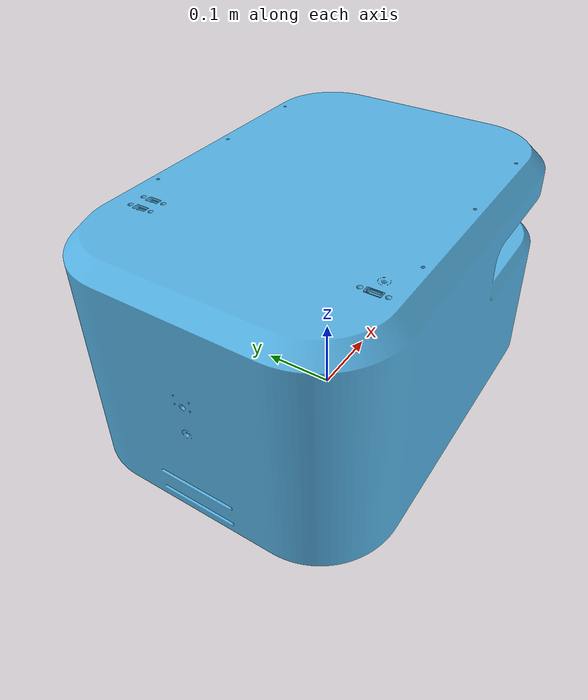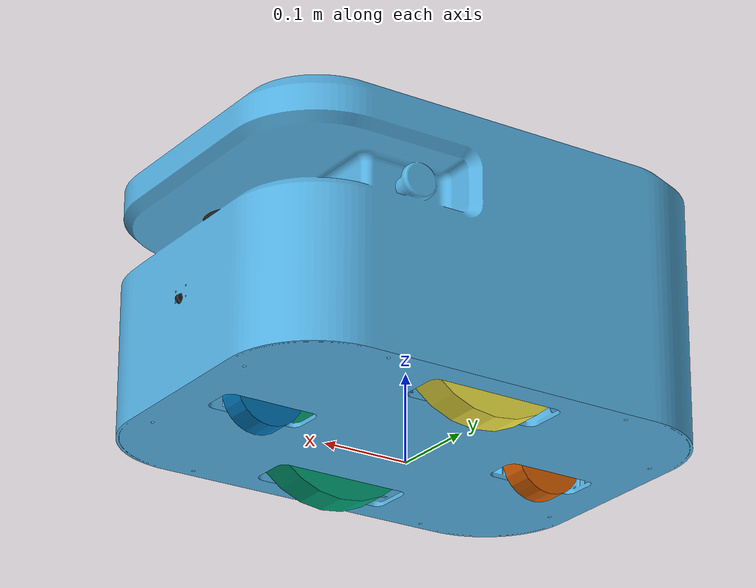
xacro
<?xml version='1.0'?>

<robot name="aibot" xmlns:xacro="http://ros.org/wiki/xacro">

  <link name='base_link' />

  <link name='base_footprint'>

    <visual name='base_footprint_visual'>
      <origin xyz="0 0 0" rpy="0 0 0"/>
      <geometry>
        <mesh filename="package://aibot_description/meshes/myagv_pro/car_body.stl" scale="0.001 0.001 0.001"/>
      </geometry>
    </visual>

    <collision name='collision_body'>
    <origin xyz="0 0 0.15" rpy="0 0 0"/>
      <geometry>
        <box size="0.40 0.55 0.3"/>
      </geometry>
    </collision>

  </link>

  <joint name="base_footprint_joint" type="fixed" >
    <origin xyz="0 0 0.019" rpy="0 0 -1.57"/>
    <child link="base_footprint"/>
    <parent link="base_link"/>
  </joint>

  <link name="left_wheel">

    <visual name="left_wheel_visual">
      <origin xyz="0 0 0" rpy="0 1.5707 0"/>
      <geometry>
        <cylinder radius="0.1025" length="0.04"/>
      </geometry>
    </visual>

    <collision name="collision_left_wheel">
      <origin xyz="0 0 0" rpy="0 1.5707 0"/>
      <geometry>
        <cylinder radius="0.1025" length="0.04"/>
      </geometry>
    </collision>

  </link>

  <link name="right_wheel">

    <visual name="right_wheel_visual">
      <origin xyz="0 0 0.0" rpy="0 1.5707 0"/>
      <geometry>
        <cylinder radius="0.1025" length="0.04"/>
      </geometry>
    </visual>

    <collision name="collision_right_wheel">
      <origin xyz="0 0 0" rpy="0 1.5707 0"/>
      <geometry>
        <cylinder radius="0.1025" length="0.04"/>
      </geometry>
    </collision>

  </link>

  <joint name="left_wheel_joint" type="continuous">
    <origin xyz="0.1425 0 0.081" rpy="0 0 0"/>
    <child link="left_wheel"/>
    <parent link="base_footprint"/>
    <axis xyz="0 1 0" />
    <limit effort="10000" velocity="1000"/>
    <joint_properties damping="1.0" friction="1.0"/>
  </joint>

  <joint name="right_wheel_joint" type="continuous">
    <origin xyz="-0.1425 0 0.081" rpy="0 0 0"/>
    <child link="right_wheel"/>
    <parent link="base_footprint"/>
    <axis xyz="0 1 0" rpy="0 0 0"/>
    <limit effort="10000" velocity="1000"/>
    <joint_properties damping="1.0" friction="1.0"/>
  </joint>

  <link name="rear_wheel">

    <visual name="rear_wheel_visual">
      <origin xyz="0 0 0" rpy="0 1.5707 0"/>
      <geometry>
        <cylinder radius="0.04" length="0.03"/>
      </geometry>
    </visual>

    <collision name="collision_rear_wheel">
      <origin xyz="0 0 0" rpy="0 1.5707 0"/>
      <geometry>
        <cylinder radius="0.04" length="0.03"/>
      </geometry>
    </collision>

  </link>

  <link name="front_wheel">

    <visual name="front_wheel_visual">
      <origin xyz="0 0 0" rpy="0 1.5707 0"/>
      <geometry>
        <cylinder radius="0.04" length="0.03"/>
      </geometry>
    </visual>

    <collision name="collision_front_wheel">
      <origin xyz="0 0 0" rpy="0 1.5707 0"/>
      <geometry>
        <cylinder radius="0.04" length="0.03"/>
      </geometry>
    </collision>

  </link>

  <joint name="rear_wheel_joint" type="continuous">
    <origin xyz="0 0.175 0.019" rpy="0 0 0"/>
    <child link="rear_wheel"/>
    <parent link="base_footprint"/>
    <axis xyz="0 1 0" rpy="0 0 0"/>
    <limit effort="10000" velocity="1000"/>
    <joint_properties damping="1.0" friction="1.0"/>
  </joint>

  <joint name="front_wheel_joint" type="continuous">
    <origin xyz="0 -0.175 0.019" rpy="0 0 0"/>
    <child link="front_wheel"/>
    <parent link="base_footprint"/>
    <axis xyz="0 1 0" rpy="0 0 0"/>
    <limit effort="10000" velocity="1000"/>
    <joint_properties damping="1.0" friction="1.0"/>
  </joint>

  <link name="camera">

    <visual name="camera_visual">
      <origin xyz="0 0 0" rpy="0 0 0"/>
      <geometry>
        <cylinder radius="0.005" length="0.005"/>
      </geometry>
      <material name="black"/>
    </visual>

    <collision name="collision_camera">
      <origin xyz="0 0 0" rpy="0 0 0"/>
      <geometry>
        <cylinder radius="0.005" length="0.005"/>
      </geometry>
    </collision>

  </link>

  <joint name="camera_joint" type="fixed">
    <origin xyz="0 0.275 0.1" rpy="1.57 0 1.57"/>
    <parent link="base_footprint"/>
    <child link="camera"/>
  </joint>

  <link name="laser">

    <visual name="laser_visual">
      <origin xyz="0 0 0" rpy="0 0 0"/>
      <geometry>
        <cylinder radius="0.036" length="0.045"/>
      </geometry>
      <material name="green_black"/>
    </visual>

    <collision name="collision_laser">
      <origin xyz="0 0 0" rpy="0 0 0"/>
      <geometry>
        <cylinder radius="0.036" length="0.045"/>
      </geometry>
    </collision>

  </link>

  <joint name="laser_joint" type="fixed">
    <axis xyz="0 1 0" />
    <origin xyz="0 0.21 0.18" rpy="0 0 -0.91"/>
    <parent link="base_footprint"/>
    <child link="laser"/>
  </joint>

  <link name="imu_link">

    <visual name="imu_visual">
      <origin xyz="0 0 0" rpy="0 0 0"/>
      <geometry>
        <cylinder radius="0.001" length="0.001"/>
      </geometry>
      <material name="black"/>
    </visual>

  </link>

  <joint name="imu_joint" type="fixed">
    <origin xyz="-0.056 -0.045 0.13" rpy="0 0 1.57"/>
    <parent link="base_footprint"/>
    <child link="imu_link"/>
  </joint>

</robot>
